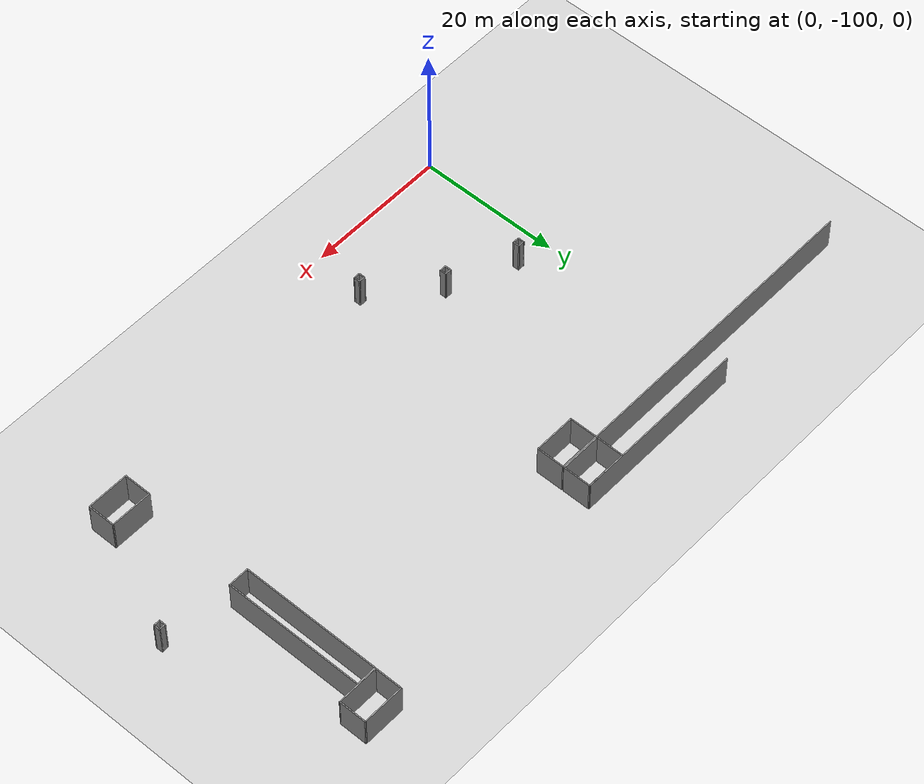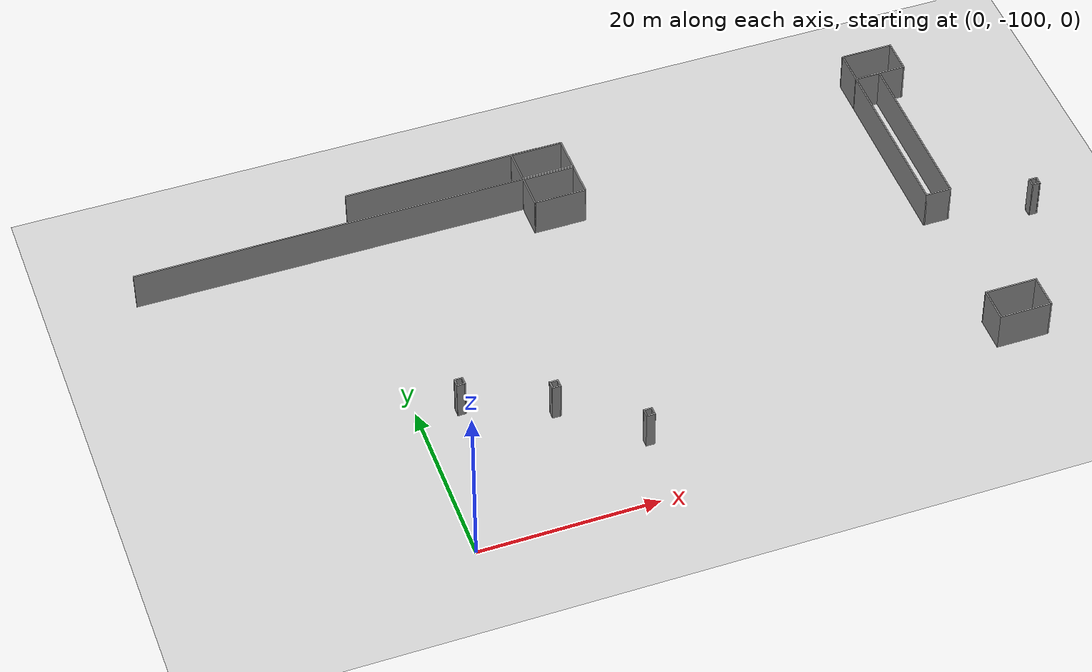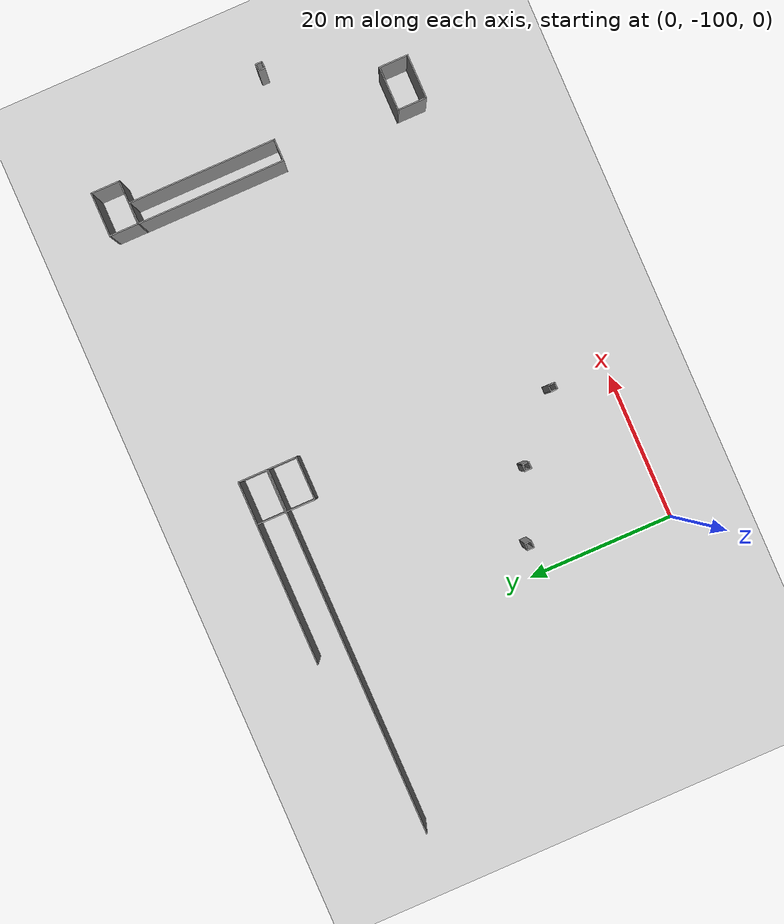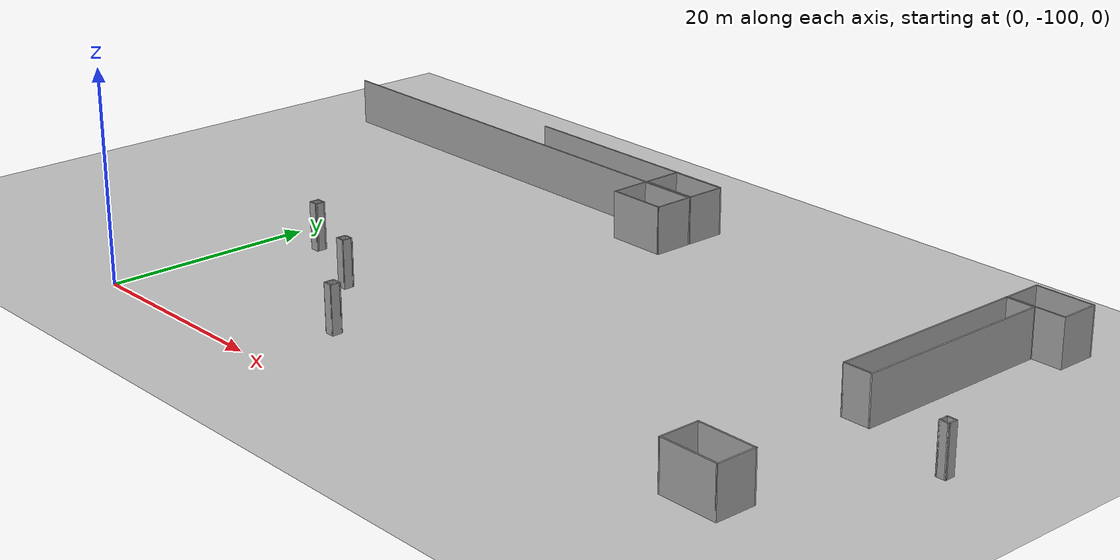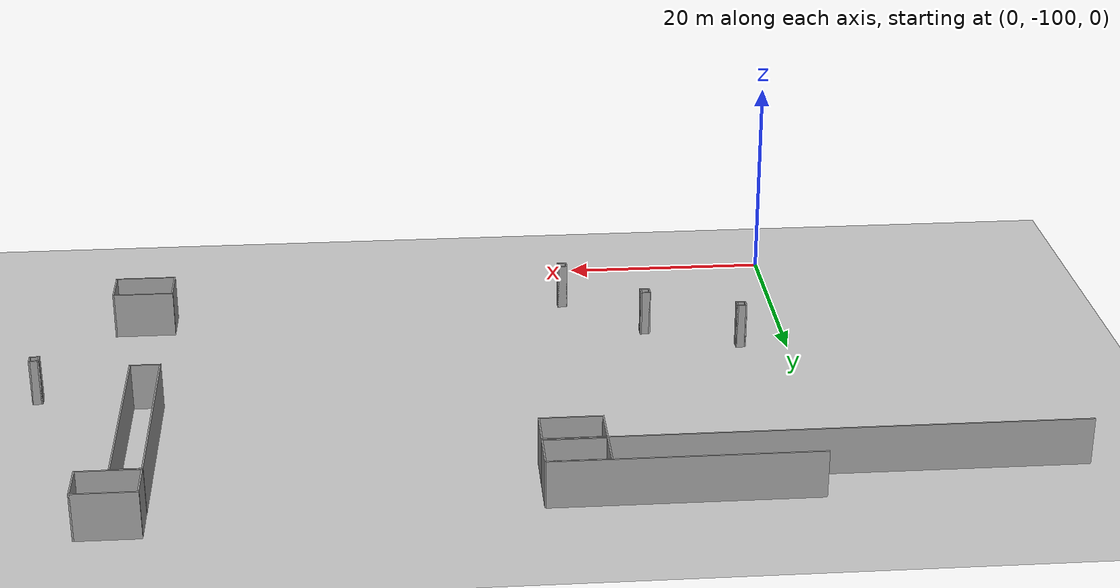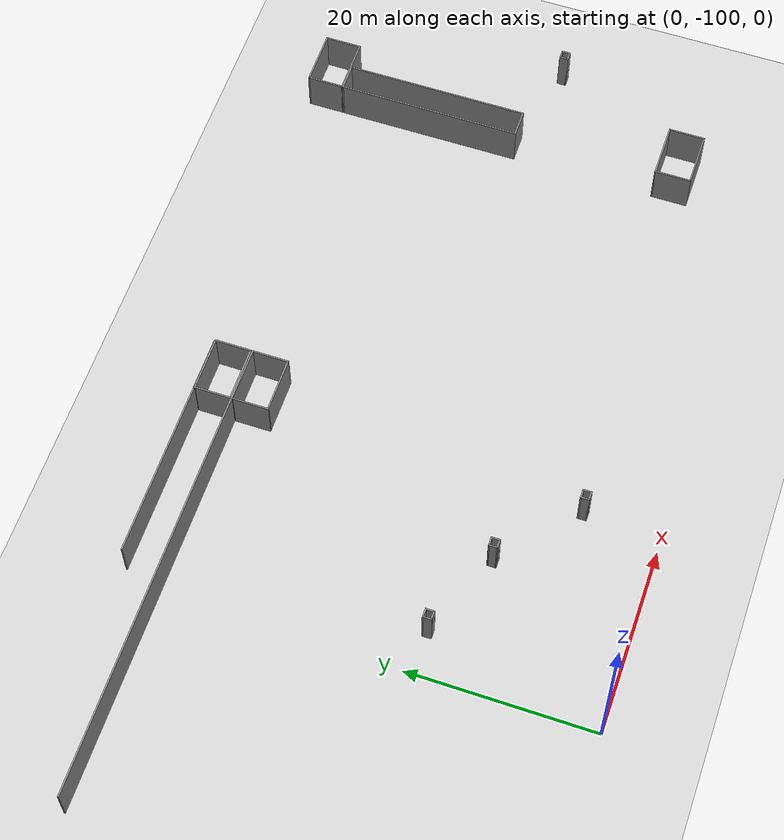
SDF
<sdf version="1.6">
 <world name="default">
  <model name="ground_plane">
   <static>1</static>
   <link name="link">
    <collision name="collision">
     <geometry><plane><normal>0 0 1</normal><size>320 320</size></plane></geometry>
     <surface>
      <contact><collide_bitmask>65535</collide_bitmask></contact>
      <friction><ode><mu>100</mu><mu2>50</mu2></ode></friction>
     </surface>
    </collision>
    <visual name="visual">
     <cast_shadows>0</cast_shadows>
     <geometry><plane><normal>0 0 1</normal><size>320 320</size></plane></geometry>
     <material>
      <script><uri>file://media/materials/scripts/gazebo.material</uri><name>Gazebo/Grey</name></script>
     </material>
    </visual>
   </link>
  </model>
  <model name="wall_25m_8">
   <pose>14.0268 -50.7126 0 0 -0 0</pose>
   <link name="Wall_28">
    <collision name="Wall_28_Collision">
     <geometry><box><size>25 0.15 6.555</size></box></geometry>
     <pose>0 0 1.25 0 -0 0</pose>
    </collision>
    <visual name="Wall_28_Visual">
     <pose>0 0 1.25 0 -0 0</pose>
     <geometry><box><size>25 0.15 6.555</size></box></geometry>
     <material>
      <script><uri>file://media/materials/scripts/gazebo.material</uri><name>Gazebo/Grey</name></script>
      <ambient>1 1 1 1</ambient>
     </material>
     <meta><layer>0</layer></meta>
    </visual>
   </link>
   <static>1</static>
  </model>
  <model name="wall_50m_1">
   <pose>1.53489 -54.7669 0 0 -0 0</pose>
   <link name="Wall_0">
    <collision name="Wall_0_Collision">
     <geometry><box><size>50 0.15 6.555</size></box></geometry>
     <pose>0 0 1.25 0 -0 0</pose>
    </collision>
    <visual name="Wall_0_Visual">
     <pose>0 0 1.25 0 -0 0</pose>
     <geometry><box><size>50 0.15 6.555</size></box></geometry>
     <material>
      <script><uri>file://media/materials/scripts/gazebo.material</uri><name>Gazebo/Grey</name></script>
      <ambient>1 1 1 1</ambient>
     </material>
     <meta><layer>0</layer></meta>
    </visual>
    <pose>-1e-06 0 0 0 -0 0</pose>
   </link>
   <static>1</static>
  </model>
  <model name="box_1mx1m_28">
   <pose>21.7019 -91.7899 0 0 -0 0</pose>
   <link name="Wall_10">
    <collision name="Wall_10_Collision">
     <geometry><box><size>1 0.15 6.555</size></box></geometry>
     <pose>0 0 1.25 0 -0 0</pose>
    </collision>
    <visual name="Wall_10_Visual">
     <pose>0 0 1.25 0 -0 0</pose>
     <geometry><box><size>1 0.15 6.555</size></box></geometry>
     <material>
      <script><uri>file://media/materials/scripts/gazebo.material</uri><name>Gazebo/Grey</name></script>
      <ambient>1 1 1 1</ambient>
     </material>
     <meta><layer>0</layer></meta>
    </visual>
    <pose>-0.425 0 0 0 -0 -1.5708</pose>
   </link>
   <link name="Wall_11">
    <collision name="Wall_11_Collision">
     <geometry><box><size>1 0.15 6.555</size></box></geometry>
     <pose>0 0 1.25 0 -0 0</pose>
    </collision>
    <visual name="Wall_11_Visual">
     <pose>0 0 1.25 0 -0 0</pose>
     <geometry><box><size>1 0.15 6.555</size></box></geometry>
     <material>
      <script><uri>file://media/materials/scripts/gazebo.material</uri><name>Gazebo/Grey</name></script>
      <ambient>1 1 1 1</ambient>
     </material>
     <meta><layer>0</layer></meta>
    </visual>
    <pose>0 -0.425 0 0 -0 0</pose>
   </link>
   <link name="Wall_12">
    <collision name="Wall_12_Collision">
     <geometry><box><size>1 0.15 6.555</size></box></geometry>
     <pose>0 0 1.25 0 -0 0</pose>
    </collision>
    <visual name="Wall_12_Visual">
     <pose>0 0 1.25 0 -0 0</pose>
     <geometry><box><size>1 0.15 6.555</size></box></geometry>
     <material>
      <script><uri>file://media/materials/scripts/gazebo.material</uri><name>Gazebo/Grey</name></script>
      <ambient>1 1 1 1</ambient>
     </material>
     <meta><layer>0</layer></meta>
    </visual>
    <pose>0.425 0 0 0 -0 1.5708</pose>
   </link>
   <link name="Wall_13">
    <collision name="Wall_13_Collision">
     <geometry><box><size>1 0.15 6.555</size></box></geometry>
     <pose>0 0 1.25 0 -0 0</pose>
    </collision>
    <visual name="Wall_13_Visual">
     <pose>0 0 1.25 0 -0 0</pose>
     <geometry><box><size>1 0.15 6.555</size></box></geometry>
     <material>
      <script><uri>file://media/materials/scripts/gazebo.material</uri><name>Gazebo/Grey</name></script>
      <ambient>1 1 1 1</ambient>
     </material>
     <meta><layer>0</layer></meta>
    </visual>
    <pose>0 0.425 0 0 -0 3.14159</pose>
   </link>
   <static>1</static>
  </model>
  <model name="box_1mx1m_29">
   <pose>13.8522 -84.7967 0 0 -0 0</pose>
   <link name="Wall_10">
    <collision name="Wall_10_Collision">
     <geometry><box><size>1 0.15 6.555</size></box></geometry>
     <pose>0 0 1.25 0 -0 0</pose>
    </collision>
    <visual name="Wall_10_Visual">
     <pose>0 0 1.25 0 -0 0</pose>
     <geometry><box><size>1 0.15 6.555</size></box></geometry>
     <material>
      <script><uri>file://media/materials/scripts/gazebo.material</uri><name>Gazebo/Grey</name></script>
      <ambient>1 1 1 1</ambient>
     </material>
     <meta><layer>0</layer></meta>
    </visual>
    <pose>-0.425 0 0 0 -0 -1.5708</pose>
   </link>
   <link name="Wall_11">
    <collision name="Wall_11_Collision">
     <geometry><box><size>1 0.15 6.555</size></box></geometry>
     <pose>0 0 1.25 0 -0 0</pose>
    </collision>
    <visual name="Wall_11_Visual">
     <pose>0 0 1.25 0 -0 0</pose>
     <geometry><box><size>1 0.15 6.555</size></box></geometry>
     <material>
      <script><uri>file://media/materials/scripts/gazebo.material</uri><name>Gazebo/Grey</name></script>
      <ambient>1 1 1 1</ambient>
     </material>
     <meta><layer>0</layer></meta>
    </visual>
    <pose>0 -0.425 0 0 -0 0</pose>
   </link>
   <link name="Wall_12">
    <collision name="Wall_12_Collision">
     <geometry><box><size>1 0.15 6.555</size></box></geometry>
     <pose>0 0 1.25 0 -0 0</pose>
    </collision>
    <visual name="Wall_12_Visual">
     <pose>0 0 1.25 0 -0 0</pose>
     <geometry><box><size>1 0.15 6.555</size></box></geometry>
     <material>
      <script><uri>file://media/materials/scripts/gazebo.material</uri><name>Gazebo/Grey</name></script>
      <ambient>1 1 1 1</ambient>
     </material>
     <meta><layer>0</layer></meta>
    </visual>
    <pose>0.425 0 0 0 -0 1.5708</pose>
   </link>
   <link name="Wall_13">
    <collision name="Wall_13_Collision">
     <geometry><box><size>1 0.15 6.555</size></box></geometry>
     <pose>0 0 1.25 0 -0 0</pose>
    </collision>
    <visual name="Wall_13_Visual">
     <pose>0 0 1.25 0 -0 0</pose>
     <geometry><box><size>1 0.15 6.555</size></box></geometry>
     <material>
      <script><uri>file://media/materials/scripts/gazebo.material</uri><name>Gazebo/Grey</name></script>
      <ambient>1 1 1 1</ambient>
     </material>
     <meta><layer>0</layer></meta>
    </visual>
    <pose>0 0.425 0 0 -0 3.14159</pose>
   </link>
   <static>1</static>
  </model>
  <model name="box_1mx1m_30">
   <pose>4.61624 -81.1103 0 0 -0 0</pose>
   <link name="Wall_10">
    <collision name="Wall_10_Collision">
     <geometry><box><size>1 0.15 6.555</size></box></geometry>
     <pose>0 0 1.25 0 -0 0</pose>
    </collision>
    <visual name="Wall_10_Visual">
     <pose>0 0 1.25 0 -0 0</pose>
     <geometry><box><size>1 0.15 6.555</size></box></geometry>
     <material>
      <script><uri>file://media/materials/scripts/gazebo.material</uri><name>Gazebo/Grey</name></script>
      <ambient>1 1 1 1</ambient>
     </material>
     <meta><layer>0</layer></meta>
    </visual>
    <pose>-0.425 0 0 0 -0 -1.5708</pose>
   </link>
   <link name="Wall_11">
    <collision name="Wall_11_Collision">
     <geometry><box><size>1 0.15 6.555</size></box></geometry>
     <pose>0 0 1.25 0 -0 0</pose>
    </collision>
    <visual name="Wall_11_Visual">
     <pose>0 0 1.25 0 -0 0</pose>
     <geometry><box><size>1 0.15 6.555</size></box></geometry>
     <material>
      <script><uri>file://media/materials/scripts/gazebo.material</uri><name>Gazebo/Grey</name></script>
      <ambient>1 1 1 1</ambient>
     </material>
     <meta><layer>0</layer></meta>
    </visual>
    <pose>0 -0.425 0 0 -0 0</pose>
   </link>
   <link name="Wall_12">
    <collision name="Wall_12_Collision">
     <geometry><box><size>1 0.15 6.555</size></box></geometry>
     <pose>0 0 1.25 0 -0 0</pose>
    </collision>
    <visual name="Wall_12_Visual">
     <pose>0 0 1.25 0 -0 0</pose>
     <geometry><box><size>1 0.15 6.555</size></box></geometry>
     <material>
      <script><uri>file://media/materials/scripts/gazebo.material</uri><name>Gazebo/Grey</name></script>
      <ambient>1 1 1 1</ambient>
     </material>
     <meta><layer>0</layer></meta>
    </visual>
    <pose>0.425 0 0 0 -0 1.5708</pose>
   </link>
   <link name="Wall_13">
    <collision name="Wall_13_Collision">
     <geometry><box><size>1 0.15 6.555</size></box></geometry>
     <pose>0 0 1.25 0 -0 0</pose>
    </collision>
    <visual name="Wall_13_Visual">
     <pose>0 0 1.25 0 -0 0</pose>
     <geometry><box><size>1 0.15 6.555</size></box></geometry>
     <material>
      <script><uri>file://media/materials/scripts/gazebo.material</uri><name>Gazebo/Grey</name></script>
      <ambient>1 1 1 1</ambient>
     </material>
     <meta><layer>0</layer></meta>
    </visual>
    <pose>0 0.425 0 0 -0 3.14159</pose>
   </link>
   <static>1</static>
  </model>
  <model name="base4x6_5">
   <pose>23.6481 -52.6974 0 0 -0 0</pose>
   <link name="Wall_23">
    <collision name="Wall_23_Collision">
     <geometry><box><size>4 0.15 6.555</size></box></geometry>
     <pose>0 0 1.25 0 -0 0</pose>
    </collision>
    <visual name="Wall_23_Visual">
     <pose>0 0 1.25 0 -0 0</pose>
     <geometry><box><size>4 0.15 6.555</size></box></geometry>
     <material>
      <script><uri>file://media/materials/scripts/gazebo.material</uri><name>Gazebo/Grey</name></script>
      <ambient>1 1 1 1</ambient>
     </material>
     <meta><layer>0</layer></meta>
    </visual>
    <pose>-2.925 0 0 0 -0 -1.5708</pose>
   </link>
   <link name="Wall_24">
    <collision name="Wall_24_Collision">
     <geometry><box><size>6 0.15 6.555</size></box></geometry>
     <pose>0 0 1.25 0 -0 0</pose>
    </collision>
    <visual name="Wall_24_Visual">
     <pose>0 0 1.25 0 -0 0</pose>
     <geometry><box><size>6 0.15 6.555</size></box></geometry>
     <material>
      <script><uri>file://media/materials/scripts/gazebo.material</uri><name>Gazebo/Grey</name></script>
      <ambient>1 1 1 1</ambient>
     </material>
     <meta><layer>0</layer></meta>
    </visual>
    <pose>-0 -1.925 0 0 -0 0</pose>
   </link>
   <link name="Wall_25">
    <collision name="Wall_25_Collision">
     <geometry><box><size>4 0.15 6.555</size></box></geometry>
     <pose>0 0 1.25 0 -0 0</pose>
    </collision>
    <visual name="Wall_25_Visual">
     <pose>0 0 1.25 0 -0 0</pose>
     <geometry><box><size>4 0.15 6.555</size></box></geometry>
     <material>
      <script><uri>file://media/materials/scripts/gazebo.material</uri><name>Gazebo/Grey</name></script>
      <ambient>1 1 1 1</ambient>
     </material>
     <meta><layer>0</layer></meta>
    </visual>
    <pose>2.925 0 0 0 -0 1.5708</pose>
   </link>
   <link name="Wall_26">
    <collision name="Wall_26_Collision">
     <geometry><box><size>6 0.15 6.555</size></box></geometry>
     <pose>0 0 1.25 0 -0 0</pose>
    </collision>
    <visual name="Wall_26_Visual">
     <pose>0 0 1.25 0 -0 0</pose>
     <geometry><box><size>6 0.15 6.555</size></box></geometry>
     <material>
      <script><uri>file://media/materials/scripts/gazebo.material</uri><name>Gazebo/Grey</name></script>
      <ambient>1 1 1 1</ambient>
     </material>
     <meta><layer>0</layer></meta>
    </visual>
    <pose>-0 1.925 0 0 -0 3.14159</pose>
   </link>
   <static>1</static>
  </model>
  <model name="base4x6_6">
   <pose>23.6481 -56.7645 0 0 -0 0</pose>
   <link name="Wall_23">
    <collision name="Wall_23_Collision">
     <geometry><box><size>4 0.15 6.555</size></box></geometry>
     <pose>0 0 1.25 0 -0 0</pose>
    </collision>
    <visual name="Wall_23_Visual">
     <pose>0 0 1.25 0 -0 0</pose>
     <geometry><box><size>4 0.15 6.555</size></box></geometry>
     <material>
      <script><uri>file://media/materials/scripts/gazebo.material</uri><name>Gazebo/Grey</name></script>
      <ambient>1 1 1 1</ambient>
     </material>
     <meta><layer>0</layer></meta>
    </visual>
    <pose>-2.925 0 0 0 -0 -1.5708</pose>
   </link>
   <link name="Wall_24">
    <collision name="Wall_24_Collision">
     <geometry><box><size>6 0.15 6.555</size></box></geometry>
     <pose>0 0 1.25 0 -0 0</pose>
    </collision>
    <visual name="Wall_24_Visual">
     <pose>0 0 1.25 0 -0 0</pose>
     <geometry><box><size>6 0.15 6.555</size></box></geometry>
     <material>
      <script><uri>file://media/materials/scripts/gazebo.material</uri><name>Gazebo/Grey</name></script>
      <ambient>1 1 1 1</ambient>
     </material>
     <meta><layer>0</layer></meta>
    </visual>
    <pose>-0 -1.925 0 0 -0 0</pose>
   </link>
   <link name="Wall_25">
    <collision name="Wall_25_Collision">
     <geometry><box><size>4 0.15 6.555</size></box></geometry>
     <pose>0 0 1.25 0 -0 0</pose>
    </collision>
    <visual name="Wall_25_Visual">
     <pose>0 0 1.25 0 -0 0</pose>
     <geometry><box><size>4 0.15 6.555</size></box></geometry>
     <material>
      <script><uri>file://media/materials/scripts/gazebo.material</uri><name>Gazebo/Grey</name></script>
      <ambient>1 1 1 1</ambient>
     </material>
     <meta><layer>0</layer></meta>
    </visual>
    <pose>2.925 0 0 0 -0 1.5708</pose>
   </link>
   <link name="Wall_26">
    <collision name="Wall_26_Collision">
     <geometry><box><size>6 0.15 6.555</size></box></geometry>
     <pose>0 0 1.25 0 -0 0</pose>
    </collision>
    <visual name="Wall_26_Visual">
     <pose>0 0 1.25 0 -0 0</pose>
     <geometry><box><size>6 0.15 6.555</size></box></geometry>
     <material>
      <script><uri>file://media/materials/scripts/gazebo.material</uri><name>Gazebo/Grey</name></script>
      <ambient>1 1 1 1</ambient>
     </material>
     <meta><layer>0</layer></meta>
    </visual>
    <pose>-0 1.925 0 0 -0 3.14159</pose>
   </link>
   <static>1</static>
  </model>
  <model name="base4x6_7_clone_4">
   <pose>64.3659 -50.2345 0 0 -0 0</pose>
   <link name="Wall_23">
    <collision name="Wall_23_Collision">
     <geometry><box><size>4 0.15 6.555</size></box></geometry>
     <pose>0 0 1.25 0 -0 0</pose>
    </collision>
    <visual name="Wall_23_Visual">
     <pose>0 0 1.25 0 -0 0</pose>
     <geometry><box><size>4 0.15 6.555</size></box></geometry>
     <material>
      <script><uri>file://media/materials/scripts/gazebo.material</uri><name>Gazebo/Grey</name></script>
      <ambient>1 1 1 1</ambient>
     </material>
     <meta><layer>0</layer></meta>
    </visual>
    <pose>-2.925 0 0 0 -0 -1.5708</pose>
   </link>
   <link name="Wall_24">
    <collision name="Wall_24_Collision">
     <geometry><box><size>6 0.15 6.555</size></box></geometry>
     <pose>0 0 1.25 0 -0 0</pose>
    </collision>
    <visual name="Wall_24_Visual">
     <pose>0 0 1.25 0 -0 0</pose>
     <geometry><box><size>6 0.15 6.555</size></box></geometry>
     <material>
      <script><uri>file://media/materials/scripts/gazebo.material</uri><name>Gazebo/Grey</name></script>
      <ambient>1 1 1 1</ambient>
     </material>
     <meta><layer>0</layer></meta>
    </visual>
    <pose>-0 -1.925 0 0 -0 0</pose>
   </link>
   <link name="Wall_25">
    <collision name="Wall_25_Collision">
     <geometry><box><size>4 0.15 6.555</size></box></geometry>
     <pose>0 0 1.25 0 -0 0</pose>
    </collision>
    <visual name="Wall_25_Visual">
     <pose>0 0 1.25 0 -0 0</pose>
     <geometry><box><size>4 0.15 6.555</size></box></geometry>
     <material>
      <script><uri>file://media/materials/scripts/gazebo.material</uri><name>Gazebo/Grey</name></script>
      <ambient>1 1 1 1</ambient>
     </material>
     <meta><layer>0</layer></meta>
    </visual>
    <pose>2.925 0 0 0 -0 1.5708</pose>
   </link>
   <link name="Wall_26">
    <collision name="Wall_26_Collision">
     <geometry><box><size>6 0.15 6.555</size></box></geometry>
     <pose>0 0 1.25 0 -0 0</pose>
    </collision>
    <visual name="Wall_26_Visual">
     <pose>0 0 1.25 0 -0 0</pose>
     <geometry><box><size>6 0.15 6.555</size></box></geometry>
     <material>
      <script><uri>file://media/materials/scripts/gazebo.material</uri><name>Gazebo/Grey</name></script>
      <ambient>1 1 1 1</ambient>
     </material>
     <meta><layer>0</layer></meta>
    </visual>
    <pose>-0 1.925 0 0 -0 3.14159</pose>
   </link>
   <static>1</static>
  </model>
  <model name="base4x6_7_clone_5">
   <pose>64.3901 -89.8129 0 0 -0 0</pose>
   <link name="Wall_23">
    <collision name="Wall_23_Collision">
     <geometry><box><size>4 0.15 6.555</size></box></geometry>
     <pose>0 0 1.25 0 -0 0</pose>
    </collision>
    <visual name="Wall_23_Visual">
     <pose>0 0 1.25 0 -0 0</pose>
     <geometry><box><size>4 0.15 6.555</size></box></geometry>
     <material>
      <script><uri>file://media/materials/scripts/gazebo.material</uri><name>Gazebo/Grey</name></script>
      <ambient>1 1 1 1</ambient>
     </material>
     <meta><layer>0</layer></meta>
    </visual>
    <pose>-2.925 0 0 0 -0 -1.5708</pose>
   </link>
   <link name="Wall_24">
    <collision name="Wall_24_Collision">
     <geometry><box><size>6 0.15 6.555</size></box></geometry>
     <pose>0 0 1.25 0 -0 0</pose>
    </collision>
    <visual name="Wall_24_Visual">
     <pose>0 0 1.25 0 -0 0</pose>
     <geometry><box><size>6 0.15 6.555</size></box></geometry>
     <material>
      <script><uri>file://media/materials/scripts/gazebo.material</uri><name>Gazebo/Grey</name></script>
      <ambient>1 1 1 1</ambient>
     </material>
     <meta><layer>0</layer></meta>
    </visual>
    <pose>-0 -1.925 0 0 -0 0</pose>
   </link>
   <link name="Wall_25">
    <collision name="Wall_25_Collision">
     <geometry><box><size>4 0.15 6.555</size></box></geometry>
     <pose>0 0 1.25 0 -0 0</pose>
    </collision>
    <visual name="Wall_25_Visual">
     <pose>0 0 1.25 0 -0 0</pose>
     <geometry><box><size>4 0.15 6.555</size></box></geometry>
     <material>
      <script><uri>file://media/materials/scripts/gazebo.material</uri><name>Gazebo/Grey</name></script>
      <ambient>1 1 1 1</ambient>
     </material>
     <meta><layer>0</layer></meta>
    </visual>
    <pose>2.925 0 0 0 -0 1.5708</pose>
   </link>
   <link name="Wall_26">
    <collision name="Wall_26_Collision">
     <geometry><box><size>6 0.15 6.555</size></box></geometry>
     <pose>0 0 1.25 0 -0 0</pose>
    </collision>
    <visual name="Wall_26_Visual">
     <pose>0 0 1.25 0 -0 0</pose>
     <geometry><box><size>6 0.15 6.555</size></box></geometry>
     <material>
      <script><uri>file://media/materials/scripts/gazebo.material</uri><name>Gazebo/Grey</name></script>
      <ambient>1 1 1 1</ambient>
     </material>
     <meta><layer>0</layer></meta>
    </visual>
    <pose>-0 1.925 0 0 -0 3.14159</pose>
   </link>
   <static>1</static>
  </model>
  <model name="box_1mx1m_clone_8">
   <pose>73.4524 -74.181 0 0 -0 0</pose>
   <link name="Wall_10">
    <collision name="Wall_10_Collision">
     <geometry><box><size>1 0.15 6.555</size></box></geometry>
     <pose>0 0 1.25 0 -0 0</pose>
    </collision>
    <visual name="Wall_10_Visual">
     <pose>0 0 1.25 0 -0 0</pose>
     <geometry><box><size>1 0.15 6.555</size></box></geometry>
     <material>
      <script><uri>file://media/materials/scripts/gazebo.material</uri><name>Gazebo/Grey</name></script>
      <ambient>1 1 1 1</ambient>
     </material>
     <meta><layer>0</layer></meta>
    </visual>
    <pose>-0.425 0 0 0 -0 -1.5708</pose>
   </link>
   <link name="Wall_11">
    <collision name="Wall_11_Collision">
     <geometry><box><size>1 0.15 6.555</size></box></geometry>
     <pose>0 0 1.25 0 -0 0</pose>
    </collision>
    <visual name="Wall_11_Visual">
     <pose>0 0 1.25 0 -0 0</pose>
     <geometry><box><size>1 0.15 6.555</size></box></geometry>
     <material>
      <script><uri>file://media/materials/scripts/gazebo.material</uri><name>Gazebo/Grey</name></script>
      <ambient>1 1 1 1</ambient>
     </material>
     <meta><layer>0</layer></meta>
    </visual>
    <pose>0 -0.425 0 0 -0 0</pose>
   </link>
   <link name="Wall_12">
    <collision name="Wall_12_Collision">
     <geometry><box><size>1 0.15 6.555</size></box></geometry>
     <pose>0 0 1.25 0 -0 0</pose>
    </collision>
    <visual name="Wall_12_Visual">
     <pose>0 0 1.25 0 -0 0</pose>
     <geometry><box><size>1 0.15 6.555</size></box></geometry>
     <material>
      <script><uri>file://media/materials/scripts/gazebo.material</uri><name>Gazebo/Grey</name></script>
      <ambient>1 1 1 1</ambient>
     </material>
     <meta><layer>0</layer></meta>
    </visual>
    <pose>0.425 0 0 0 -0 1.5708</pose>
   </link>
   <link name="Wall_13">
    <collision name="Wall_13_Collision">
     <geometry><box><size>1 0.15 6.555</size></box></geometry>
     <pose>0 0 1.25 0 -0 0</pose>
    </collision>
    <visual name="Wall_13_Visual">
     <pose>0 0 1.25 0 -0 0</pose>
     <geometry><box><size>1 0.15 6.555</size></box></geometry>
     <material>
      <script><uri>file://media/materials/scripts/gazebo.material</uri><name>Gazebo/Grey</name></script>
      <ambient>1 1 1 1</ambient>
     </material>
     <meta><layer>0</layer></meta>
    </visual>
    <pose>0 0.425 0 0 -0 3.14159</pose>
   </link>
   <static>1</static>
  </model>
  <model name="base20x3_3_clone_1">
   <pose>62.8525 -62.1902 0 0 -0 0</pose>
   <link name="Wall_21">
    <collision name="Wall_21_Collision">
     <geometry><box><size>20 0.15 6.555</size></box></geometry>
     <pose>0 0 1.25 0 -0 0</pose>
    </collision>
    <visual name="Wall_21_Visual">
     <pose>0 0 1.25 0 -0 0</pose>
     <geometry><box><size>20 0.15 6.555</size></box></geometry>
     <material>
      <script><uri>file://media/materials/scripts/gazebo.material</uri><name>Gazebo/Grey</name></script>
      <ambient>1 1 1 1</ambient>
     </material>
     <meta><layer>0</layer></meta>
    </visual>
    <pose>-1.425 -0 0 0 -0 -1.5708</pose>
   </link>
   <link name="Wall_22">
    <collision name="Wall_22_Collision">
     <geometry><box><size>3 0.15 6.555</size></box></geometry>
     <pose>0 0 1.25 0 -0 0</pose>
    </collision>
    <visual name="Wall_22_Visual">
     <pose>0 0 1.25 0 -0 0</pose>
     <geometry><box><size>3 0.15 6.555</size></box></geometry>
     <material>
      <script><uri>file://media/materials/scripts/gazebo.material</uri><name>Gazebo/Grey</name></script>
      <ambient>1 1 1 1</ambient>
     </material>
     <meta><layer>0</layer></meta>
    </visual>
    <pose>-0 -9.925 0 0 -0 0</pose>
   </link>
   <link name="Wall_23">
    <collision name="Wall_23_Collision">
     <geometry><box><size>20 0.15 6.555</size></box></geometry>
     <pose>0 0 1.25 0 -0 0</pose>
    </collision>
    <visual name="Wall_23_Visual">
     <pose>0 0 1.25 0 -0 0</pose>
     <geometry><box><size>20 0.15 6.555</size></box></geometry>
     <material>
      <script><uri>file://media/materials/scripts/gazebo.material</uri><name>Gazebo/Grey</name></script>
      <ambient>1 1 1 1</ambient>
     </material>
     <meta><layer>0</layer></meta>
    </visual>
    <pose>1.425 -0 0 0 -0 1.5708</pose>
   </link>
   <link name="Wall_24">
    <collision name="Wall_24_Collision">
     <geometry><box><size>3 0.15 6.555</size></box></geometry>
     <pose>0 0 1.25 0 -0 0</pose>
    </collision>
    <visual name="Wall_24_Visual">
     <pose>0 0 1.25 0 -0 0</pose>
     <geometry><box><size>3 0.15 6.555</size></box></geometry>
     <material>
      <script><uri>file://media/materials/scripts/gazebo.material</uri><name>Gazebo/Grey</name></script>
      <ambient>1 1 1 1</ambient>
     </material>
     <meta><layer>0</layer></meta>
    </visual>
    <pose>-0 9.925 0 0 -0 3.14159</pose>
   </link>
   <static>1</static>
  </model>
 </world>
</sdf>
